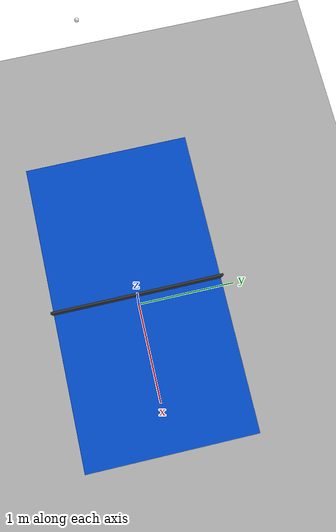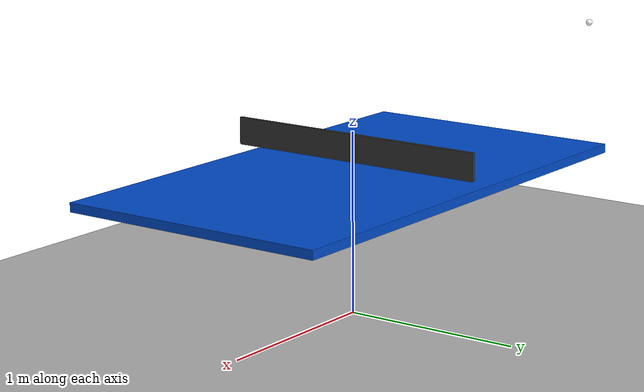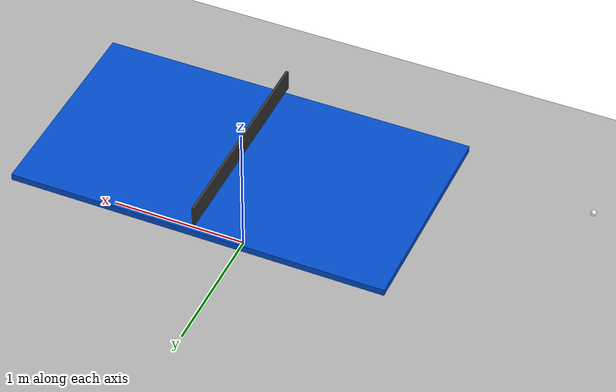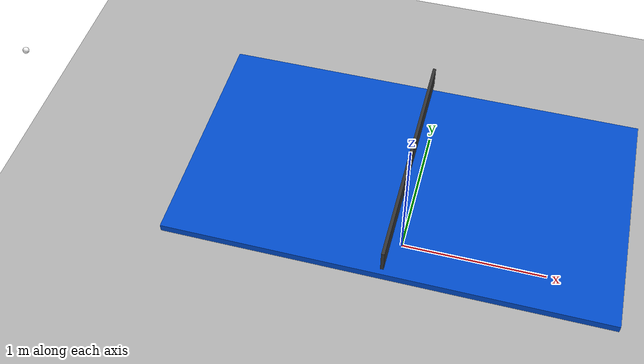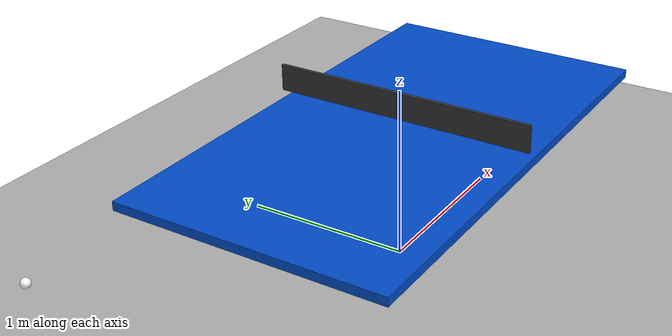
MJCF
<mujoco model="ball_launch">
    <compiler angle="degree" coordinate="local"/>
    <option timestep="0.001" gravity="0 0 -9.81" viscosity="0"/>

    <asset>
        <material name="table_mat" rgba="0.0 0.3 0.8 1"/>
        <material name="net_mat" rgba="0.2 0.2 0.2 1"/>
        <material name="ball_mat" rgba="1 1 1 1"/>
    </asset>

    <worldbody>
        <light diffuse=".8 .8 .8" pos="0 0 2" dir="0 0 -1"/>
        <geom name="ground" type="plane" size="3 3 0.1" rgba=".7 .7 .7 1"/>

        <!-- Centered table -->
        <body name="table" pos="0 0 0.76">
            <geom name="table_geom" type="box" size="1.37 0.7625 0.025" material="table_mat"/>
        </body>
        <body name="net" pos="0 0 0.9125">
            <geom name="net_geom" type="box" size="0.01 0.76 0.0762" material="net_mat"/>
        </body>

        <!-- Ball with starting position matching the Python script -->
        <!-- The pos coordinates are (x, y, z) -->
        <body name="ball_body" pos="-2.5 0 1.25">
            <freejoint name="ball_free"/>
            <geom name="ball" type="sphere" size="0.02" density="0.27" material="ball_mat"/>
        </body>
    </worldbody>

    <contact>
        <pair geom1="ball" geom2="table_geom"
              solref="0.0003 1" solimp="0.98 0.99 0.001" friction="0.15 0.01 0.001"/>
        <pair geom1="ball" geom2="net_geom"
              solref="0.005 1" solimp="0.3 0.5 0.01" friction="0.8 0.05 0.001"/>
        <pair geom1="ball" geom2="ground"
              solref="0.0003 1" solimp="0.98 0.99 0.001" friction="0.2 0.01 0.001"/>
    </contact>
</mujoco>
